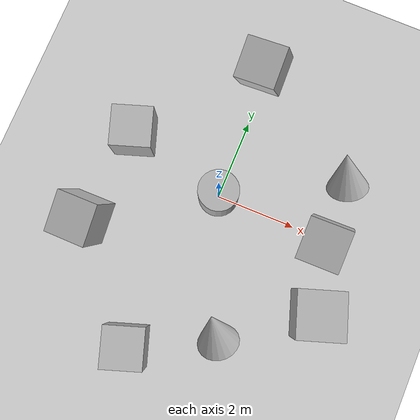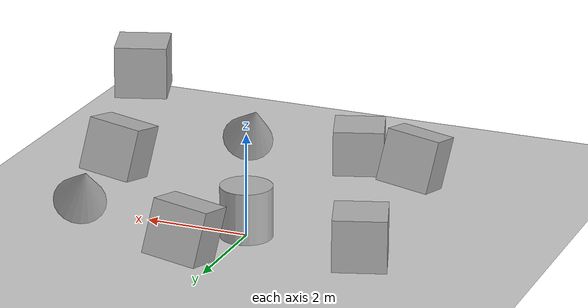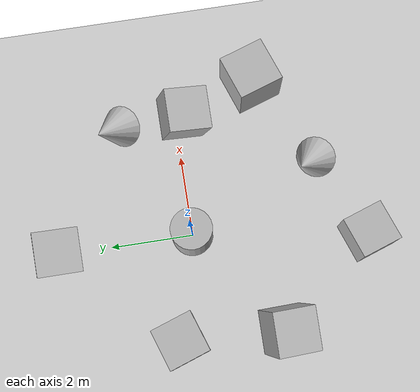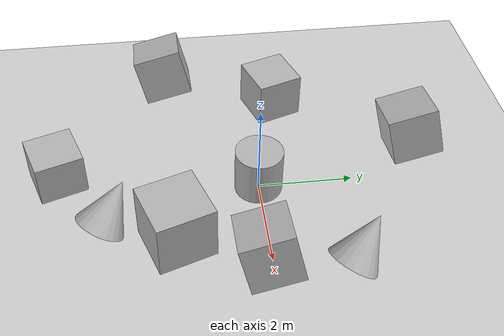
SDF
<sdf version='1.10'>
  <world name='empty'>
    <physics name='1ms' type='ignored'>
      <max_step_size>0.001</max_step_size>
      <real_time_factor>1</real_time_factor>
      <real_time_update_rate>1000</real_time_update_rate>
    </physics>
    <plugin name='gz::sim::systems::Physics' filename='ignition-gazebo-physics-system'/>
    <plugin name='gz::sim::systems::UserCommands' filename='ignition-gazebo-user-commands-system'/>
    <plugin name='gz::sim::systems::SceneBroadcaster' filename='ignition-gazebo-scene-broadcaster-system'/>
    <plugin name='gz::sim::systems::Contact' filename='ignition-gazebo-contact-system'/>
    <plugin name='gz::sim::systems::Sensors' filename='ignition-gazebo-sensors-system'>
      <render_engine>ogre2</render_engine>
    </plugin>
    <gravity>0 0 -9.8000000000000007</gravity>
    <magnetic_field>5.5644999999999998e-06 2.2875799999999999e-05 -4.2388400000000002e-05</magnetic_field>
    <atmosphere type='adiabatic'/>
    <scene>
      <ambient>0.400000006 0.400000006 0.400000006 1</ambient>
      <background>0.699999988 0.699999988 0.699999988 1</background>
      <shadows>true</shadows>
    </scene>
    <model name='ground_plane'>
      <static>true</static>
      <link name='link'>
        <collision name='collision'>
          <geometry>
            <plane>
              <normal>0 0 1</normal>
              <size>100 100</size>
            </plane>
          </geometry>
          <surface>
            <friction>
              <ode/>
            </friction>
            <bounce/>
            <contact/>
          </surface>
        </collision>
        <visual name='visual'>
          <geometry>
            <plane>
              <normal>0 0 1</normal>
              <size>100 100</size>
            </plane>
          </geometry>
          <material>
            <ambient>0.800000012 0.800000012 0.800000012 1</ambient>
            <diffuse>0.800000012 0.800000012 0.800000012 1</diffuse>
            <specular>0.800000012 0.800000012 0.800000012 1</specular>
          </material>
        </visual>
        <pose>0 0 0 0 0 0</pose>
        <inertial>
          <pose>0 0 0 0 0 0</pose>
          <mass>1</mass>
          <inertia>
            <ixx>1</ixx>
            <ixy>0</ixy>
            <ixz>0</ixz>
            <iyy>1</iyy>
            <iyz>0</iyz>
            <izz>1</izz>
          </inertia>
        </inertial>
        <enable_wind>false</enable_wind>
      </link>
      <pose>0 0 0 0 0 0</pose>
      <self_collide>false</self_collide>
    </model>
    <model name='cylinder'>
      <pose>0 0 0.5 0 0 0</pose>
      <link name='cylinder_link'>
        <inertial>
          <inertia>
            <ixx>0.14580000000000001</ixx>
            <ixy>0</ixy>
            <ixz>0</ixz>
            <iyy>0.14580000000000001</iyy>
            <iyz>0</iyz>
            <izz>0.125</izz>
          </inertia>
          <mass>1</mass>
          <pose>0 0 0 0 0 0</pose>
        </inertial>
        <collision name='cylinder_collision'>
          <geometry>
            <cylinder>
              <radius>0.5</radius>
              <length>1</length>
            </cylinder>
          </geometry>
          <surface>
            <friction>
              <ode/>
            </friction>
            <bounce/>
            <contact/>
          </surface>
        </collision>
        <visual name='cylinder_visual'>
          <geometry>
            <cylinder>
              <radius>0.5</radius>
              <length>1</length>
            </cylinder>
          </geometry>
          <material>
            <ambient>0.300000012 0.300000012 0.900000036 1</ambient>
            <diffuse>0.699999988 0.699999988 0.699999988 1</diffuse>
            <specular>1 1 1 1</specular>
          </material>
        </visual>
        <pose>0 0 0 0 0 0</pose>
        <enable_wind>false</enable_wind>
      </link>
      <static>true</static>
      <self_collide>false</self_collide>
    </model>
    <model name='cone'>
      <pose>2.5997500419616699 1.5373167991638184 1.1267299652099609 -0.53452699002288795 -0.46419098743650983 1.3359206884566243e-08</pose>
      <link name='cone_link'>
        <inertial>
          <inertia>
            <ixx>0.074999999999999997</ixx>
            <ixy>0</ixy>
            <ixz>0</ixz>
            <iyy>0.074999999999999997</iyy>
            <iyz>0</iyz>
            <izz>0.074999999999999997</izz>
          </inertia>
          <mass>1</mass>
          <pose>0 0 0 0 0 0</pose>
        </inertial>
        <collision name='cone_collision'>
          <geometry>
            <cone>
              <radius>0.5</radius>
              <length>1</length>
            </cone>
          </geometry>
          <surface>
            <friction>
              <ode/>
            </friction>
            <bounce/>
            <contact/>
          </surface>
        </collision>
        <visual name='cone_visual'>
          <geometry>
            <cone>
              <radius>0.5</radius>
              <length>1</length>
            </cone>
          </geometry>
          <material>
            <ambient>0.300000012 0.300000012 0.300000012 1</ambient>
            <diffuse>0.699999988 0.699999988 0.699999988 1</diffuse>
            <emissive>0.800000012 0 0 1</emissive>
            <specular>1 1 1 1</specular>
          </material>
        </visual>
        <pose>0 0 0 0 0 0</pose>
        <enable_wind>false</enable_wind>
      </link>
      <static>true</static>
      <self_collide>false</self_collide>
    </model>
    <model name='box'>
      <pose>2.7057440280914307 -0.23427201807498932 1.2891297340393066 0.23676599955305405 -0.15059199347655444 -1.5624957238646675e-08</pose>
      <link name='box_link'>
        <inertial>
          <inertia>
            <ixx>0.16666</ixx>
            <ixy>0</ixy>
            <ixz>0</ixz>
            <iyy>0.16666</iyy>
            <iyz>0</iyz>
            <izz>0.16666</izz>
          </inertia>
          <mass>1</mass>
          <pose>0 0 0 0 0 0</pose>
        </inertial>
        <collision name='box_collision'>
          <geometry>
            <box>
              <size>1 1 1</size>
            </box>
          </geometry>
          <surface>
            <friction>
              <ode/>
            </friction>
            <bounce/>
            <contact/>
          </surface>
        </collision>
        <visual name='box_visual'>
          <geometry>
            <box>
              <size>1 1 1</size>
            </box>
          </geometry>
          <material>
            <ambient>0.300000012 0.300000012 0.300000012 1</ambient>
            <diffuse>0.699999988 0.699999988 0.699999988 1</diffuse>
            <emissive>0 0 1 1</emissive>
            <specular>1 1 1 1</specular>
          </material>
        </visual>
        <pose>0 0 0 0 0 0</pose>
        <enable_wind>false</enable_wind>
      </link>
      <static>true</static>
      <self_collide>false</self_collide>
    </model>
    <model name='box_0'>
      <pose>2.9141299724578857 -1.8042299747467041 2.3950178623199463 0 0 0.3280059988348919</pose>
      <link name='box_link'>
        <inertial>
          <inertia>
            <ixx>0.16666</ixx>
            <ixy>0</ixy>
            <ixz>0</ixz>
            <iyy>0.16666</iyy>
            <iyz>0</iyz>
            <izz>0.16666</izz>
          </inertia>
          <mass>1</mass>
          <pose>0 0 0 0 0 0</pose>
        </inertial>
        <collision name='box_collision'>
          <geometry>
            <box>
              <size>1 1 1</size>
            </box>
          </geometry>
          <surface>
            <friction>
              <ode/>
            </friction>
            <bounce/>
            <contact/>
          </surface>
        </collision>
        <visual name='box_visual'>
          <geometry>
            <box>
              <size>1 1 1</size>
            </box>
          </geometry>
          <material>
            <ambient>0.300000012 0.300000012 0.300000012 1</ambient>
            <diffuse>0.699999988 0.699999988 0.699999988 1</diffuse>
            <specular>1 1 1 1</specular>
            <emissive>0 0.600000024 0 1</emissive>
          </material>
        </visual>
        <pose>0 0 0 0 0 0</pose>
        <enable_wind>false</enable_wind>
      </link>
      <static>true</static>
      <self_collide>false</self_collide>
    </model>
    <model name='box_1'>
      <pose>-0.13174628217300555 3.0898562204165056 1.2891299724578857 0.23676600184422125 -0.15059199891650776 -1.5887738329826208e-08</pose>
      <link name='box_link'>
        <inertial>
          <inertia>
            <ixx>0.16666</ixx>
            <ixy>0</ixy>
            <ixz>0</ixz>
            <iyy>0.16666</iyy>
            <iyz>0</iyz>
            <izz>0.16666</izz>
          </inertia>
          <mass>1</mass>
          <pose>0 0 0 0 0 0</pose>
        </inertial>
        <collision name='box_collision'>
          <geometry>
            <box>
              <size>1 1 1</size>
            </box>
          </geometry>
          <surface>
            <friction>
              <ode/>
            </friction>
            <bounce/>
            <contact/>
          </surface>
        </collision>
        <visual name='box_visual'>
          <geometry>
            <box>
              <size>1 1 1</size>
            </box>
          </geometry>
          <material>
            <ambient>0.300000012 0.300000012 0.300000012 1</ambient>
            <diffuse>0.699999988 0.699999988 0.699999988 1</diffuse>
            <emissive>0 0 1 1</emissive>
            <specular>1 1 1 1</specular>
          </material>
        </visual>
        <pose>0 0 0 0 0 0</pose>
        <enable_wind>false</enable_wind>
      </link>
      <static>true</static>
      <self_collide>false</self_collide>
    </model>
    <model name='box_0_1'>
      <pose>-0.63919367041051212 -4.1853989223413413 0.3950200080871582 0 0 0.32800599804330716</pose>
      <link name='box_link'>
        <inertial>
          <inertia>
            <ixx>0.16666</ixx>
            <ixy>0</ixy>
            <ixz>0</ixz>
            <iyy>0.16666</iyy>
            <iyz>0</iyz>
            <izz>0.16666</izz>
          </inertia>
          <mass>1</mass>
          <pose>0 0 0 0 0 0</pose>
        </inertial>
        <collision name='box_collision'>
          <geometry>
            <box>
              <size>1 1 1</size>
            </box>
          </geometry>
          <surface>
            <friction>
              <ode/>
            </friction>
            <bounce/>
            <contact/>
          </surface>
        </collision>
        <visual name='box_visual'>
          <geometry>
            <box>
              <size>1 1 1</size>
            </box>
          </geometry>
          <material>
            <ambient>0.300000012 0.300000012 0.300000012 1</ambient>
            <diffuse>0.699999988 0.699999988 0.699999988 1</diffuse>
            <specular>1 1 1 1</specular>
            <emissive>0 0.600000024 0 1</emissive>
          </material>
        </visual>
        <pose>0 0 0 0 0 0</pose>
        <enable_wind>false</enable_wind>
      </link>
      <static>true</static>
      <self_collide>false</self_collide>
    </model>
    <model name='cone_1'>
      <pose>1.1448155337502808 -2.9791527674241625 1.0267299652099609 -0.53452701916945056 -0.46419100993340984 2.0248138578210777e-08</pose>
      <link name='cone_link'>
        <inertial>
          <inertia>
            <ixx>0.074999999999999997</ixx>
            <ixy>0</ixy>
            <ixz>0</ixz>
            <iyy>0.074999999999999997</iyy>
            <iyz>0</iyz>
            <izz>0.074999999999999997</izz>
          </inertia>
          <mass>1</mass>
          <pose>0 0 0 0 0 0</pose>
        </inertial>
        <collision name='cone_collision'>
          <geometry>
            <cone>
              <radius>0.5</radius>
              <length>1</length>
            </cone>
          </geometry>
          <surface>
            <friction>
              <ode/>
            </friction>
            <bounce/>
            <contact/>
          </surface>
        </collision>
        <visual name='cone_visual'>
          <geometry>
            <cone>
              <radius>0.5</radius>
              <length>1</length>
            </cone>
          </geometry>
          <material>
            <ambient>0.300000012 0.300000012 0.300000012 1</ambient>
            <diffuse>0.699999988 0.699999988 0.699999988 1</diffuse>
            <emissive>0.800000012 0 0 1</emissive>
            <specular>1 1 1 1</specular>
          </material>
        </visual>
        <pose>0 0 0 0 0 0</pose>
        <enable_wind>false</enable_wind>
      </link>
      <static>true</static>
      <self_collide>false</self_collide>
    </model>
    <model name='box_0_2'>
      <pose>-2.4940746155926306 0.61769453930244578 0.5950200080871582 0 0 0.32800599804330716</pose>
      <link name='box_link'>
        <inertial>
          <inertia>
            <ixx>0.16666</ixx>
            <ixy>0</ixy>
            <ixz>0</ixz>
            <iyy>0.16666</iyy>
            <iyz>0</iyz>
            <izz>0.16666</izz>
          </inertia>
          <mass>1</mass>
          <pose>0 0 0 0 0 0</pose>
        </inertial>
        <collision name='box_collision'>
          <geometry>
            <box>
              <size>1 1 1</size>
            </box>
          </geometry>
          <surface>
            <friction>
              <ode/>
            </friction>
            <bounce/>
            <contact/>
          </surface>
        </collision>
        <visual name='box_visual'>
          <geometry>
            <box>
              <size>1 1 1</size>
            </box>
          </geometry>
          <material>
            <ambient>0.300000012 0.300000012 0.300000012 1</ambient>
            <diffuse>0.699999988 0.699999988 0.699999988 1</diffuse>
            <specular>1 1 1 1</specular>
            <emissive>0 0.600000024 0 1</emissive>
          </material>
        </visual>
        <pose>0 0 0 0 0 0</pose>
        <enable_wind>false</enable_wind>
      </link>
      <static>true</static>
      <self_collide>false</self_collide>
    </model>
    <model name='box_2'>
      <pose>-2.6440927622174435 -1.8162525752303051 1.2891299724578857 0.23676599811265781 -0.15059199657650402 -1.5606234094000103e-08</pose>
      <link name='box_link'>
        <inertial>
          <inertia>
            <ixx>0.16666</ixx>
            <ixy>0</ixy>
            <ixz>0</ixz>
            <iyy>0.16666</iyy>
            <iyz>0</iyz>
            <izz>0.16666</izz>
          </inertia>
          <mass>1</mass>
          <pose>0 0 0 0 0 0</pose>
        </inertial>
        <collision name='box_collision'>
          <geometry>
            <box>
              <size>1 1 1</size>
            </box>
          </geometry>
          <surface>
            <friction>
              <ode/>
            </friction>
            <bounce/>
            <contact/>
          </surface>
        </collision>
        <visual name='box_visual'>
          <geometry>
            <box>
              <size>1 1 1</size>
            </box>
          </geometry>
          <material>
            <ambient>0.300000012 0.300000012 0.300000012 1</ambient>
            <diffuse>0.699999988 0.699999988 0.699999988 1</diffuse>
            <emissive>0 0 1 1</emissive>
            <specular>1 1 1 1</specular>
          </material>
        </visual>
        <pose>0 0 0 0 0 0</pose>
        <enable_wind>false</enable_wind>
      </link>
      <static>true</static>
      <self_collide>false</self_collide>
    </model>
    <light name='sun' type='directional'>
      <pose>0 0 10 0 0 0</pose>
      <cast_shadows>true</cast_shadows>
      <intensity>1</intensity>
      <direction>-0.5 0.10000000000000001 -0.90000000000000002</direction>
      <diffuse>0.800000012 0.800000012 0.800000012 1</diffuse>
      <specular>0.200000003 0.200000003 0.200000003 1</specular>
      <attenuation>
        <range>1000</range>
        <linear>0.0099999997764825821</linear>
        <constant>0.89999997615814209</constant>
        <quadratic>0.0010000000474974513</quadratic>
      </attenuation>
      <spot>
        <inner_angle>0</inner_angle>
        <outer_angle>0</outer_angle>
        <falloff>0</falloff>
      </spot>
    </light>
  </world>
</sdf>
